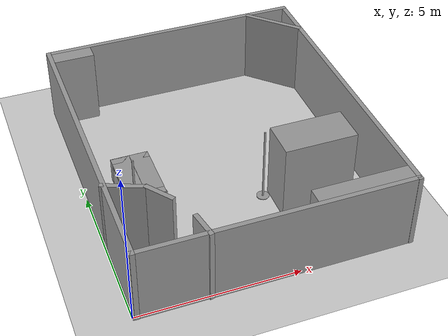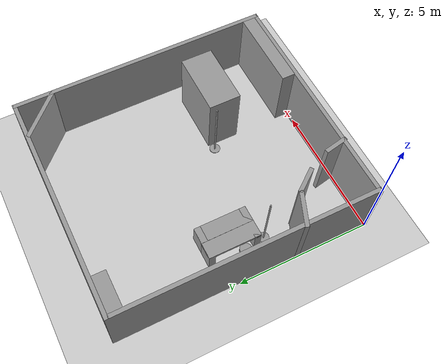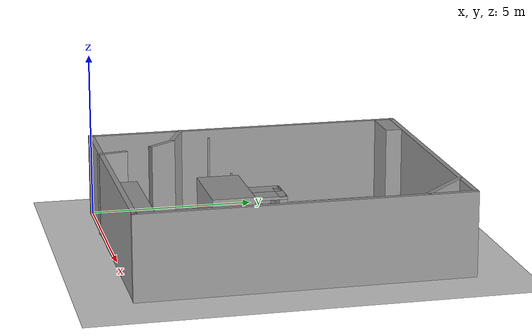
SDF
<sdf version="1.6">
 <world name="default">
  <model name="ground_plane">
   <pose>6.5 0 0 0 -0 0</pose>
   <static>1</static>
   <link name="link">
    <collision name="collision">
     <geometry><plane><normal>0 0 1</normal><size>100 100</size></plane></geometry>
     <surface>
      <contact><collide_bitmask>65535</collide_bitmask></contact>
      <friction><ode><mu>100</mu><mu2>50</mu2></ode></friction>
     </surface>
    </collision>
    <visual name="visual">
     <cast_shadows>0</cast_shadows>
     <geometry><plane><normal>0 0 1</normal><size>100 100</size></plane></geometry>
     <material>
      <script><uri>file://media/materials/scripts/gazebo.material</uri><name>Gazebo/Grey</name></script>
     </material>
    </visual>
   </link>
  </model>
  <model name="Untitled_6">
   <link name="link_0">
    <inertial>
     <mass>1</mass>
     <inertia><ixx>0.145833</ixx><ixy>0</ixy><ixz>0</ixz><iyy>0.145833</iyy><iyz>0</iyz><izz>0.125</izz></inertia>
    </inertial>
    <visual name="visual">
     <geometry><cylinder><radius>0.22</radius><length>0.15</length></cylinder></geometry>
     <material>
      <lighting>1</lighting>
      <script><uri>file://media/materials/scripts/gazebo.material</uri><name>Gazebo/Grey</name></script>
      <shader type="pixel"><normal_map>__default__</normal_map></shader>
      <ambient>0.3 0.3 0.3 1</ambient>
      <diffuse>0.7 0.7 0.7 1</diffuse>
      <specular>0.01 0.01 0.01 1</specular>
      <emissive>0 0 0 1</emissive>
     </material>
    </visual>
    <collision name="collision">
     <geometry><cylinder><radius>0.22</radius><length>0.15</length></cylinder></geometry>
     <surface>
      <friction>
       <ode><mu>1</mu><mu2>1</mu2><fdir1>0 0 0</fdir1><slip1>0</slip1><slip2>0</slip2></ode>
       <torsional>
        <coefficient>1</coefficient>
        <patch_radius>0</patch_radius>
        <surface_radius>0</surface_radius>
        <use_patch_radius>1</use_patch_radius>
        <ode><slip>0</slip></ode>
       </torsional>
      </friction>
      <bounce><restitution_coefficient>0</restitution_coefficient><threshold>1e+06</threshold></bounce>
      <contact>
       <collide_without_contact>0</collide_without_contact>
       <collide_without_contact_bitmask>1</collide_without_contact_bitmask>
       <collide_bitmask>1</collide_bitmask>
       <ode>
        <soft_cfm>0</soft_cfm>
        <soft_erp>0.2</soft_erp>
        <kp>1e+13</kp>
        <kd>1</kd>
        <max_vel>0.01</max_vel>
        <min_depth>0</min_depth>
       </ode>
       <bullet>
        <split_impulse>1</split_impulse>
        <split_impulse_penetration_threshold>-0.01</split_impulse_penetration_threshold>
        <soft_cfm>0</soft_cfm>
        <soft_erp>0.2</soft_erp>
        <kp>1e+13</kp>
        <kd>1</kd>
       </bullet>
      </contact>
     </surface>
    </collision>
   </link>
   <static>0</static>
   <pose>1.0026 4.25805 0.074993 1e-06 1e-06 0</pose>
  </model>
  <model name="Untitled_7">
   <link name="link_0">
    <inertial>
     <mass>1</mass>
     <inertia><ixx>0.145833</ixx><ixy>0</ixy><ixz>0</ixz><iyy>0.145833</iyy><iyz>0</iyz><izz>0.125</izz></inertia>
    </inertial>
    <visual name="visual">
     <geometry><cylinder><radius>0.22</radius><length>0.15</length></cylinder></geometry>
     <material>
      <lighting>1</lighting>
      <script><uri>file://media/materials/scripts/gazebo.material</uri><name>Gazebo/Grey</name></script>
      <shader type="pixel"><normal_map>__default__</normal_map></shader>
      <ambient>0.3 0.3 0.3 1</ambient>
      <diffuse>0.7 0.7 0.7 1</diffuse>
      <specular>0.01 0.01 0.01 1</specular>
      <emissive>0 0 0 1</emissive>
     </material>
    </visual>
    <collision name="collision">
     <geometry><cylinder><radius>0.22</radius><length>0.15</length></cylinder></geometry>
     <surface>
      <friction>
       <ode><mu>1</mu><mu2>1</mu2><fdir1>0 0 0</fdir1><slip1>0</slip1><slip2>0</slip2></ode>
       <torsional>
        <coefficient>1</coefficient>
        <patch_radius>0</patch_radius>
        <surface_radius>0</surface_radius>
        <use_patch_radius>1</use_patch_radius>
        <ode><slip>0</slip></ode>
       </torsional>
      </friction>
      <bounce><restitution_coefficient>0</restitution_coefficient><threshold>1e+06</threshold></bounce>
      <contact>
       <collide_without_contact>0</collide_without_contact>
       <collide_without_contact_bitmask>1</collide_without_contact_bitmask>
       <collide_bitmask>1</collide_bitmask>
       <ode>
        <soft_cfm>0</soft_cfm>
        <soft_erp>0.2</soft_erp>
        <kp>1e+13</kp>
        <kd>1</kd>
        <max_vel>0.01</max_vel>
        <min_depth>0</min_depth>
       </ode>
       <bullet>
        <split_impulse>1</split_impulse>
        <split_impulse_penetration_threshold>-0.01</split_impulse_penetration_threshold>
        <soft_cfm>0</soft_cfm>
        <soft_erp>0.2</soft_erp>
        <kp>1e+13</kp>
        <kd>1</kd>
       </bullet>
      </contact>
     </surface>
    </collision>
   </link>
   <static>0</static>
   <pose>2.2 4.38853 0.074993 1e-06 1e-06 0</pose>
  </model>
  <model name="Table_SF_clone">
   <link name="link_0">
    <pose>-0 -0.875 -0.116667 0 -0 0</pose>
    <inertial>
     <mass>1</mass>
     <inertia>
      <ixx>0.166667</ixx>
      <ixy>0</ixy>
      <ixz>0</ixz>
      <iyy>0.166667</iyy>
      <iyz>0</iyz>
      <izz>0.166667</izz>
     </inertia>
    </inertial>
    <visual name="visual">
     <geometry><box><size>0.6 0.25 0.8</size></box></geometry>
     <material>
      <lighting>1</lighting>
      <script><uri>file://media/materials/scripts/gazebo.material</uri><name>Gazebo/Grey</name></script>
      <shader type="pixel"><normal_map>__default__</normal_map></shader>
      <ambient>0.3 0.3 0.3 1</ambient>
      <diffuse>0.7 0.7 0.7 1</diffuse>
      <specular>0.01 0.01 0.01 1</specular>
      <emissive>0 0 0 1</emissive>
     </material>
    </visual>
    <collision name="collision">
     <geometry><box><size>0.6 0.25 0.8</size></box></geometry>
     <surface>
      <friction>
       <ode><mu>1</mu><mu2>1</mu2><fdir1>0 0 0</fdir1><slip1>0</slip1><slip2>0</slip2></ode>
       <torsional>
        <coefficient>1</coefficient>
        <patch_radius>0</patch_radius>
        <surface_radius>0</surface_radius>
        <use_patch_radius>1</use_patch_radius>
        <ode><slip>0</slip></ode>
       </torsional>
      </friction>
      <bounce><restitution_coefficient>0</restitution_coefficient><threshold>1e+06</threshold></bounce>
      <contact>
       <collide_without_contact>0</collide_without_contact>
       <collide_without_contact_bitmask>1</collide_without_contact_bitmask>
       <collide_bitmask>1</collide_bitmask>
       <ode>
        <soft_cfm>0</soft_cfm>
        <soft_erp>0.2</soft_erp>
        <kp>1e+13</kp>
        <kd>1</kd>
        <max_vel>0.01</max_vel>
        <min_depth>0</min_depth>
       </ode>
       <bullet>
        <split_impulse>1</split_impulse>
        <split_impulse_penetration_threshold>-0.01</split_impulse_penetration_threshold>
        <soft_cfm>0</soft_cfm>
        <soft_erp>0.2</soft_erp>
        <kp>1e+13</kp>
        <kd>1</kd>
       </bullet>
      </contact>
     </surface>
    </collision>
   </link>
   <link name="link_0_clone">
    <pose>0 0.875 -0.116667 0 -0 0</pose>
    <inertial>
     <mass>1</mass>
     <inertia>
      <ixx>0.166667</ixx>
      <ixy>0</ixy>
      <ixz>0</ixz>
      <iyy>0.166667</iyy>
      <iyz>0</iyz>
      <izz>0.166667</izz>
     </inertia>
    </inertial>
    <visual name="visual">
     <geometry><box><size>0.6 0.25 0.8</size></box></geometry>
     <material>
      <lighting>1</lighting>
      <script><uri>file://media/materials/scripts/gazebo.material</uri><name>Gazebo/Grey</name></script>
      <shader type="pixel"><normal_map>__default__</normal_map></shader>
      <ambient>0.3 0.3 0.3 1</ambient>
      <diffuse>0.7 0.7 0.7 1</diffuse>
      <specular>0.01 0.01 0.01 1</specular>
      <emissive>0 0 0 1</emissive>
     </material>
    </visual>
    <collision name="collision">
     <geometry><box><size>0.6 0.25 0.8</size></box></geometry>
     <surface>
      <friction>
       <ode><mu>1</mu><mu2>1</mu2><fdir1>0 0 0</fdir1><slip1>0</slip1><slip2>0</slip2></ode>
       <torsional>
        <coefficient>1</coefficient>
        <patch_radius>0</patch_radius>
        <surface_radius>0</surface_radius>
        <use_patch_radius>1</use_patch_radius>
        <ode><slip>0</slip></ode>
       </torsional>
      </friction>
      <bounce><restitution_coefficient>0</restitution_coefficient><threshold>1e+06</threshold></bounce>
      <contact>
       <collide_without_contact>0</collide_without_contact>
       <collide_without_contact_bitmask>1</collide_without_contact_bitmask>
       <collide_bitmask>1</collide_bitmask>
       <ode>
        <soft_cfm>0</soft_cfm>
        <soft_erp>0.2</soft_erp>
        <kp>1e+13</kp>
        <kd>1</kd>
        <max_vel>0.01</max_vel>
        <min_depth>0</min_depth>
       </ode>
       <bullet>
        <split_impulse>1</split_impulse>
        <split_impulse_penetration_threshold>-0.01</split_impulse_penetration_threshold>
        <soft_cfm>0</soft_cfm>
        <soft_erp>0.2</soft_erp>
        <kp>1e+13</kp>
        <kd>1</kd>
       </bullet>
      </contact>
     </surface>
    </collision>
   </link>
   <link name="link_1">
    <pose>-0 0 0.233333 0 -0 0</pose>
    <inertial>
     <mass>1</mass>
     <inertia>
      <ixx>0.166667</ixx>
      <ixy>0</ixy>
      <ixz>0</ixz>
      <iyy>0.166667</iyy>
      <iyz>0</iyz>
      <izz>0.166667</izz>
     </inertia>
    </inertial>
    <visual name="visual">
     <geometry><box><size>0.6 2 0.1</size></box></geometry>
     <material>
      <lighting>1</lighting>
      <script><uri>file://media/materials/scripts/gazebo.material</uri><name>Gazebo/Grey</name></script>
      <shader type="pixel"><normal_map>__default__</normal_map></shader>
      <ambient>0.3 0.3 0.3 1</ambient>
      <diffuse>0.7 0.7 0.7 1</diffuse>
      <specular>0.01 0.01 0.01 1</specular>
      <emissive>0 0 0 1</emissive>
     </material>
    </visual>
    <collision name="collision">
     <geometry><box><size>0.6 2 0.1</size></box></geometry>
     <surface>
      <friction>
       <ode><mu>1</mu><mu2>1</mu2><fdir1>0 0 0</fdir1><slip1>0</slip1><slip2>0</slip2></ode>
       <torsional>
        <coefficient>1</coefficient>
        <patch_radius>0</patch_radius>
        <surface_radius>0</surface_radius>
        <use_patch_radius>1</use_patch_radius>
        <ode><slip>0</slip></ode>
       </torsional>
      </friction>
      <bounce><restitution_coefficient>0</restitution_coefficient><threshold>1e+06</threshold></bounce>
      <contact>
       <collide_without_contact>0</collide_without_contact>
       <collide_without_contact_bitmask>1</collide_without_contact_bitmask>
       <collide_bitmask>1</collide_bitmask>
       <ode>
        <soft_cfm>0</soft_cfm>
        <soft_erp>0.2</soft_erp>
        <kp>1e+13</kp>
        <kd>1</kd>
        <max_vel>0.01</max_vel>
        <min_depth>0</min_depth>
       </ode>
       <bullet>
        <split_impulse>1</split_impulse>
        <split_impulse_penetration_threshold>-0.01</split_impulse_penetration_threshold>
        <soft_cfm>0</soft_cfm>
        <soft_erp>0.2</soft_erp>
        <kp>1e+13</kp>
        <kd>1</kd>
       </bullet>
      </contact>
     </surface>
    </collision>
   </link>
   <joint name="link_0_JOINT_0" type="fixed">
    <parent>link_0</parent>
    <child>link_1</child>
    <physics>
     <ode><limit><cfm>0</cfm><erp>0.2</erp></limit><suspension><cfm>0</cfm><erp>0.2</erp></suspension></ode>
    </physics>
   </joint>
   <joint name="link_0_clone_JOINT_1" type="fixed">
    <parent>link_0_clone</parent>
    <child>link_1</child>
    <physics>
     <ode><limit><cfm>0</cfm><erp>0.2</erp></limit><suspension><cfm>0</cfm><erp>0.2</erp></suspension></ode>
    </physics>
   </joint>
   <static>1</static>
   <pose>1.90049 4.69695 0.516667 0 0 -0.00054</pose>
  </model>
  <model name="Pillar_SF_clone">
   <link name="link_0">
    <pose>-0 0 0.01 -0 -0 -0</pose>
    <inertial>
     <mass>1</mass>
     <inertia><ixx>0.145833</ixx><ixy>0</ixy><ixz>0</ixz><iyy>0.145833</iyy><iyz>0</iyz><izz>0.125</izz></inertia>
    </inertial>
    <visual name="visual">
     <geometry><cylinder><radius>0.2</radius><length>0.02</length></cylinder></geometry>
     <material>
      <lighting>1</lighting>
      <script><uri>file://media/materials/scripts/gazebo.material</uri><name>Gazebo/Grey</name></script>
      <shader type="pixel"><normal_map>__default__</normal_map></shader>
      <ambient>0.3 0.3 0.3 1</ambient>
      <diffuse>0.7 0.7 0.7 1</diffuse>
      <specular>0.01 0.01 0.01 1</specular>
      <emissive>0 0 0 1</emissive>
     </material>
    </visual>
    <collision name="collision">
     <geometry><cylinder><radius>0.2</radius><length>0.02</length></cylinder></geometry>
     <surface>
      <friction>
       <ode><mu>1</mu><mu2>1</mu2><fdir1>0 0 0</fdir1><slip1>0</slip1><slip2>0</slip2></ode>
       <torsional>
        <coefficient>1</coefficient>
        <patch_radius>0</patch_radius>
        <surface_radius>0</surface_radius>
        <use_patch_radius>1</use_patch_radius>
        <ode><slip>0</slip></ode>
       </torsional>
      </friction>
      <bounce><restitution_coefficient>0</restitution_coefficient><threshold>1e+06</threshold></bounce>
      <contact>
       <collide_without_contact>0</collide_without_contact>
       <collide_without_contact_bitmask>1</collide_without_contact_bitmask>
       <collide_bitmask>1</collide_bitmask>
       <ode>
        <soft_cfm>0</soft_cfm>
        <soft_erp>0.2</soft_erp>
        <kp>1e+13</kp>
        <kd>1</kd>
        <max_vel>0.01</max_vel>
        <min_depth>0</min_depth>
       </ode>
       <bullet>
        <split_impulse>1</split_impulse>
        <split_impulse_penetration_threshold>-0.01</split_impulse_penetration_threshold>
        <soft_cfm>0</soft_cfm>
        <soft_erp>0.2</soft_erp>
        <kp>1e+13</kp>
        <kd>1</kd>
       </bullet>
      </contact>
     </surface>
    </collision>
   </link>
   <link name="link_1">
    <pose>-0 0 1.25 -0 -0 -0</pose>
    <inertial>
     <mass>1</mass>
     <inertia><ixx>0.145833</ixx><ixy>0</ixy><ixz>0</ixz><iyy>0.145833</iyy><iyz>0</iyz><izz>0.125</izz></inertia>
    </inertial>
    <visual name="visual">
     <geometry><cylinder><radius>0.03</radius><length>2.5</length></cylinder></geometry>
     <material>
      <lighting>1</lighting>
      <script><uri>file://media/materials/scripts/gazebo.material</uri><name>Gazebo/Grey</name></script>
      <shader type="pixel"><normal_map>__default__</normal_map></shader>
      <ambient>0.3 0.3 0.3 1</ambient>
      <diffuse>0.7 0.7 0.7 1</diffuse>
      <specular>0.01 0.01 0.01 1</specular>
      <emissive>0 0 0 1</emissive>
     </material>
    </visual>
    <collision name="collision">
     <geometry><cylinder><radius>0.03</radius><length>2.5</length></cylinder></geometry>
     <surface>
      <friction>
       <ode><mu>1</mu><mu2>1</mu2><fdir1>0 0 0</fdir1><slip1>0</slip1><slip2>0</slip2></ode>
       <torsional>
        <coefficient>1</coefficient>
        <patch_radius>0</patch_radius>
        <surface_radius>0</surface_radius>
        <use_patch_radius>1</use_patch_radius>
        <ode><slip>0</slip></ode>
       </torsional>
      </friction>
      <bounce><restitution_coefficient>0</restitution_coefficient><threshold>1e+06</threshold></bounce>
      <contact>
       <collide_without_contact>0</collide_without_contact>
       <collide_without_contact_bitmask>1</collide_without_contact_bitmask>
       <collide_bitmask>1</collide_bitmask>
       <ode>
        <soft_cfm>0</soft_cfm>
        <soft_erp>0.2</soft_erp>
        <kp>1e+13</kp>
        <kd>1</kd>
        <max_vel>0.01</max_vel>
        <min_depth>0</min_depth>
       </ode>
       <bullet>
        <split_impulse>1</split_impulse>
        <split_impulse_penetration_threshold>-0.01</split_impulse_penetration_threshold>
        <soft_cfm>0</soft_cfm>
        <soft_erp>0.2</soft_erp>
        <kp>1e+13</kp>
        <kd>1</kd>
       </bullet>
      </contact>
     </surface>
    </collision>
   </link>
   <joint name="link_0_JOINT_0" type="fixed">
    <parent>link_0</parent>
    <child>link_1</child>
    <physics>
     <ode><limit><cfm>0</cfm><erp>0.2</erp></limit><suspension><cfm>0</cfm><erp>0.2</erp></suspension></ode>
    </physics>
   </joint>
   <static>1</static>
   <pose>1.1582 3.4573 0 0 0 -0.013058</pose>
  </model>
  <model name="Pillar_SF_clone_2">
   <link name="link_0">
    <pose>0 -0 0.01 0 -0 0</pose>
    <inertial>
     <mass>1</mass>
     <inertia><ixx>0.145833</ixx><ixy>0</ixy><ixz>0</ixz><iyy>0.145833</iyy><iyz>0</iyz><izz>0.125</izz></inertia>
    </inertial>
    <visual name="visual">
     <geometry><cylinder><radius>0.2</radius><length>0.02</length></cylinder></geometry>
     <material>
      <lighting>1</lighting>
      <script><uri>file://media/materials/scripts/gazebo.material</uri><name>Gazebo/Grey</name></script>
      <shader type="pixel"><normal_map>__default__</normal_map></shader>
      <ambient>0.3 0.3 0.3 1</ambient>
      <diffuse>0.7 0.7 0.7 1</diffuse>
      <specular>0.01 0.01 0.01 1</specular>
      <emissive>0 0 0 1</emissive>
     </material>
    </visual>
    <collision name="collision">
     <geometry><cylinder><radius>0.2</radius><length>0.02</length></cylinder></geometry>
     <surface>
      <friction>
       <ode><mu>1</mu><mu2>1</mu2><fdir1>0 0 0</fdir1><slip1>0</slip1><slip2>0</slip2></ode>
       <torsional>
        <coefficient>1</coefficient>
        <patch_radius>0</patch_radius>
        <surface_radius>0</surface_radius>
        <use_patch_radius>1</use_patch_radius>
        <ode><slip>0</slip></ode>
       </torsional>
      </friction>
      <bounce><restitution_coefficient>0</restitution_coefficient><threshold>1e+06</threshold></bounce>
      <contact>
       <collide_without_contact>0</collide_without_contact>
       <collide_without_contact_bitmask>1</collide_without_contact_bitmask>
       <collide_bitmask>1</collide_bitmask>
       <ode>
        <soft_cfm>0</soft_cfm>
        <soft_erp>0.2</soft_erp>
        <kp>1e+13</kp>
        <kd>1</kd>
        <max_vel>0.01</max_vel>
        <min_depth>0</min_depth>
       </ode>
       <bullet>
        <split_impulse>1</split_impulse>
        <split_impulse_penetration_threshold>-0.01</split_impulse_penetration_threshold>
        <soft_cfm>0</soft_cfm>
        <soft_erp>0.2</soft_erp>
        <kp>1e+13</kp>
        <kd>1</kd>
       </bullet>
      </contact>
     </surface>
    </collision>
   </link>
   <link name="link_1">
    <pose>0 -0 1.25 0 -0 0</pose>
    <inertial>
     <mass>1</mass>
     <inertia><ixx>0.145833</ixx><ixy>0</ixy><ixz>0</ixz><iyy>0.145833</iyy><iyz>0</iyz><izz>0.125</izz></inertia>
    </inertial>
    <visual name="visual">
     <geometry><cylinder><radius>0.03</radius><length>2.5</length></cylinder></geometry>
     <material>
      <lighting>1</lighting>
      <script><uri>file://media/materials/scripts/gazebo.material</uri><name>Gazebo/Grey</name></script>
      <shader type="pixel"><normal_map>__default__</normal_map></shader>
      <ambient>0.3 0.3 0.3 1</ambient>
      <diffuse>0.7 0.7 0.7 1</diffuse>
      <specular>0.01 0.01 0.01 1</specular>
      <emissive>0 0 0 1</emissive>
     </material>
    </visual>
    <collision name="collision">
     <geometry><cylinder><radius>0.03</radius><length>2.5</length></cylinder></geometry>
     <surface>
      <friction>
       <ode><mu>1</mu><mu2>1</mu2><fdir1>0 0 0</fdir1><slip1>0</slip1><slip2>0</slip2></ode>
       <torsional>
        <coefficient>1</coefficient>
        <patch_radius>0</patch_radius>
        <surface_radius>0</surface_radius>
        <use_patch_radius>1</use_patch_radius>
        <ode><slip>0</slip></ode>
       </torsional>
      </friction>
      <bounce><restitution_coefficient>0</restitution_coefficient><threshold>1e+06</threshold></bounce>
      <contact>
       <collide_without_contact>0</collide_without_contact>
       <collide_without_contact_bitmask>1</collide_without_contact_bitmask>
       <collide_bitmask>1</collide_bitmask>
       <ode>
        <soft_cfm>0</soft_cfm>
        <soft_erp>0.2</soft_erp>
        <kp>1e+13</kp>
        <kd>1</kd>
        <max_vel>0.01</max_vel>
        <min_depth>0</min_depth>
       </ode>
       <bullet>
        <split_impulse>1</split_impulse>
        <split_impulse_penetration_threshold>-0.01</split_impulse_penetration_threshold>
        <soft_cfm>0</soft_cfm>
        <soft_erp>0.2</soft_erp>
        <kp>1e+13</kp>
        <kd>1</kd>
       </bullet>
      </contact>
     </surface>
    </collision>
   </link>
   <joint name="link_0_JOINT_0" type="fixed">
    <parent>link_0</parent>
    <child>link_1</child>
    <physics>
     <ode><limit><cfm>0</cfm><erp>0.2</erp></limit><suspension><cfm>0</cfm><erp>0.2</erp></suspension></ode>
    </physics>
   </joint>
   <static>1</static>
   <pose>5.17893 3.32127 0 0 0 -0.013001</pose>
  </model>
  <model name="Table_SF">
   <link name="link_0">
    <pose>-0 -0.875 -0.116667 0 -0 0</pose>
    <inertial>
     <mass>1000</mass>
     <inertia>
      <ixx>0.166667</ixx>
      <ixy>0</ixy>
      <ixz>0</ixz>
      <iyy>0.166667</iyy>
      <iyz>0</iyz>
      <izz>0.166667</izz>
     </inertia>
    </inertial>
    <visual name="visual">
     <geometry><box><size>0.6 0.25 0.8</size></box></geometry>
     <material>
      <lighting>1</lighting>
      <script><uri>file://media/materials/scripts/gazebo.material</uri><name>Gazebo/Grey</name></script>
      <shader type="pixel"><normal_map>__default__</normal_map></shader>
      <ambient>0.3 0.3 0.3 1</ambient>
      <diffuse>0.7 0.7 0.7 1</diffuse>
      <specular>0.01 0.01 0.01 1</specular>
      <emissive>0 0 0 1</emissive>
     </material>
    </visual>
    <collision name="collision">
     <geometry><box><size>0.6 0.25 0.8</size></box></geometry>
     <surface>
      <friction>
       <ode><mu>1</mu><mu2>1</mu2><fdir1>0 0 0</fdir1><slip1>0</slip1><slip2>0</slip2></ode>
       <torsional>
        <coefficient>1</coefficient>
        <patch_radius>0</patch_radius>
        <surface_radius>0</surface_radius>
        <use_patch_radius>1</use_patch_radius>
        <ode><slip>0</slip></ode>
       </torsional>
      </friction>
      <bounce><restitution_coefficient>0</restitution_coefficient><threshold>1e+06</threshold></bounce>
      <contact>
       <collide_without_contact>0</collide_without_contact>
       <collide_without_contact_bitmask>1</collide_without_contact_bitmask>
       <collide_bitmask>1</collide_bitmask>
       <ode>
        <soft_cfm>0</soft_cfm>
        <soft_erp>0.2</soft_erp>
        <kp>1e+13</kp>
        <kd>1</kd>
        <max_vel>0.01</max_vel>
        <min_depth>0</min_depth>
       </ode>
       <bullet>
        <split_impulse>1</split_impulse>
        <split_impulse_penetration_threshold>-0.01</split_impulse_penetration_threshold>
        <soft_cfm>0</soft_cfm>
        <soft_erp>0.2</soft_erp>
        <kp>1e+13</kp>
        <kd>1</kd>
       </bullet>
      </contact>
     </surface>
    </collision>
   </link>
   <link name="link_0_clone">
    <pose>0 0.875 -0.116667 0 -0 0</pose>
    <inertial>
     <mass>1000</mass>
     <inertia>
      <ixx>0.166667</ixx>
      <ixy>0</ixy>
      <ixz>0</ixz>
      <iyy>0.166667</iyy>
      <iyz>0</iyz>
      <izz>0.166667</izz>
     </inertia>
    </inertial>
    <visual name="visual">
     <geometry><box><size>0.6 0.25 0.8</size></box></geometry>
     <material>
      <lighting>1</lighting>
      <script><uri>file://media/materials/scripts/gazebo.material</uri><name>Gazebo/Grey</name></script>
      <shader type="pixel"><normal_map>__default__</normal_map></shader>
      <ambient>0.3 0.3 0.3 1</ambient>
      <diffuse>0.7 0.7 0.7 1</diffuse>
      <specular>0.01 0.01 0.01 1</specular>
      <emissive>0 0 0 1</emissive>
     </material>
    </visual>
    <collision name="collision">
     <geometry><box><size>0.6 0.25 0.8</size></box></geometry>
     <surface>
      <friction>
       <ode><mu>1</mu><mu2>1</mu2><fdir1>0 0 0</fdir1><slip1>0</slip1><slip2>0</slip2></ode>
       <torsional>
        <coefficient>1</coefficient>
        <patch_radius>0</patch_radius>
        <surface_radius>0</surface_radius>
        <use_patch_radius>1</use_patch_radius>
        <ode><slip>0</slip></ode>
       </torsional>
      </friction>
      <bounce><restitution_coefficient>0</restitution_coefficient><threshold>1e+06</threshold></bounce>
      <contact>
       <collide_without_contact>0</collide_without_contact>
       <collide_without_contact_bitmask>1</collide_without_contact_bitmask>
       <collide_bitmask>1</collide_bitmask>
       <ode>
        <soft_cfm>0</soft_cfm>
        <soft_erp>0.2</soft_erp>
        <kp>1e+13</kp>
        <kd>1</kd>
        <max_vel>0.01</max_vel>
        <min_depth>0</min_depth>
       </ode>
       <bullet>
        <split_impulse>1</split_impulse>
        <split_impulse_penetration_threshold>-0.01</split_impulse_penetration_threshold>
        <soft_cfm>0</soft_cfm>
        <soft_erp>0.2</soft_erp>
        <kp>1e+13</kp>
        <kd>1</kd>
       </bullet>
      </contact>
     </surface>
    </collision>
   </link>
   <link name="link_1">
    <pose>0 0 0.233333 0 -0 0</pose>
    <inertial>
     <mass>1000</mass>
     <inertia>
      <ixx>0.166667</ixx>
      <ixy>0</ixy>
      <ixz>0</ixz>
      <iyy>0.166667</iyy>
      <iyz>0</iyz>
      <izz>0.166667</izz>
     </inertia>
    </inertial>
    <visual name="visual">
     <geometry><box><size>0.6 2 0.1</size></box></geometry>
     <material>
      <lighting>1</lighting>
      <script><uri>file://media/materials/scripts/gazebo.material</uri><name>Gazebo/Grey</name></script>
      <shader type="pixel"><normal_map>__default__</normal_map></shader>
      <ambient>0.3 0.3 0.3 1</ambient>
      <diffuse>0.7 0.7 0.7 1</diffuse>
      <specular>0.01 0.01 0.01 1</specular>
      <emissive>0 0 0 1</emissive>
     </material>
    </visual>
    <collision name="collision">
     <geometry><box><size>0.6 2 0.1</size></box></geometry>
     <surface>
      <friction>
       <ode><mu>1</mu><mu2>1</mu2><fdir1>0 0 0</fdir1><slip1>0</slip1><slip2>0</slip2></ode>
       <torsional>
        <coefficient>1</coefficient>
        <patch_radius>0</patch_radius>
        <surface_radius>0</surface_radius>
        <use_patch_radius>1</use_patch_radius>
        <ode><slip>0</slip></ode>
       </torsional>
      </friction>
      <bounce><restitution_coefficient>0</restitution_coefficient><threshold>1e+06</threshold></bounce>
      <contact>
       <collide_without_contact>0</collide_without_contact>
       <collide_without_contact_bitmask>1</collide_without_contact_bitmask>
       <collide_bitmask>1</collide_bitmask>
       <ode>
        <soft_cfm>0</soft_cfm>
        <soft_erp>0.2</soft_erp>
        <kp>1e+13</kp>
        <kd>1</kd>
        <max_vel>0.01</max_vel>
        <min_depth>0</min_depth>
       </ode>
       <bullet>
        <split_impulse>1</split_impulse>
        <split_impulse_penetration_threshold>-0.01</split_impulse_penetration_threshold>
        <soft_cfm>0</soft_cfm>
        <soft_erp>0.2</soft_erp>
        <kp>1e+13</kp>
        <kd>1</kd>
       </bullet>
      </contact>
     </surface>
    </collision>
   </link>
   <joint name="link_0_JOINT_0" type="fixed">
    <parent>link_0</parent>
    <child>link_1</child>
    <physics>
     <ode><limit><cfm>0</cfm><erp>0.2</erp></limit><suspension><cfm>0</cfm><erp>0.2</erp></suspension></ode>
    </physics>
   </joint>
   <joint name="link_0_clone_JOINT_1" type="fixed">
    <parent>link_0_clone</parent>
    <child>link_1</child>
    <physics>
     <ode><limit><cfm>0</cfm><erp>0.2</erp></limit><suspension><cfm>0</cfm><erp>0.2</erp></suspension></ode>
    </physics>
   </joint>
   <static>1</static>
   <pose>1.29795 4.69731 0.516666 0 4e-06 -2e-06</pose>
  </model>
  <model name="Factory_room">
   <link name="Wall_2">
    <pose>0.038385 4.83866 0 0 -0 0</pose>
    <visual name="Wall_2_Visual">
     <pose>0 0 1.25 0 -0 0</pose>
     <geometry><box><size>8.5 0.15 2.5</size></box></geometry>
     <material>
      <script><uri>file://media/materials/scripts/gazebo.material</uri><name>Gazebo/Grey</name></script>
      <ambient>1 1 1 1</ambient>
      <shader type="pixel"/>
      <diffuse>0.7 0.7 0.7 1</diffuse>
      <specular>0.01 0.01 0.01 1</specular>
      <emissive>0 0 0 1</emissive>
     </material>
     <meta><layer>0</layer></meta>
    </visual>
    <collision name="Wall_2_Collision">
     <pose>0 0 1.25 0 -0 0</pose>
     <geometry><box><size>8.5 0.15 2.5</size></box></geometry>
     <surface>
      <friction>
       <ode><mu>1</mu><mu2>1</mu2><fdir1>0 0 0</fdir1><slip1>0</slip1><slip2>0</slip2></ode>
       <torsional>
        <coefficient>1</coefficient>
        <patch_radius>0</patch_radius>
        <surface_radius>0</surface_radius>
        <use_patch_radius>1</use_patch_radius>
        <ode><slip>0</slip></ode>
       </torsional>
      </friction>
      <bounce><restitution_coefficient>0</restitution_coefficient><threshold>1e+06</threshold></bounce>
      <contact>
       <collide_without_contact>0</collide_without_contact>
       <collide_without_contact_bitmask>1</collide_without_contact_bitmask>
       <collide_bitmask>1</collide_bitmask>
       <ode>
        <soft_cfm>0</soft_cfm>
        <soft_erp>0.2</soft_erp>
        <kp>1e+13</kp>
        <kd>1</kd>
        <max_vel>0.01</max_vel>
        <min_depth>0</min_depth>
       </ode>
       <bullet>
        <split_impulse>1</split_impulse>
        <split_impulse_penetration_threshold>-0.01</split_impulse_penetration_threshold>
        <soft_cfm>0</soft_cfm>
        <soft_erp>0.2</soft_erp>
        <kp>1e+13</kp>
        <kd>1</kd>
       </bullet>
      </contact>
     </surface>
    </collision>
   </link>
   <link name="Wall_22">
    <pose>-3.6458 -2.20352 0 0 0 -0.391215</pose>
    <inertial>
     <mass>1</mass>
     <inertia><ixx>1</ixx><ixy>0</ixy><ixz>0</ixz><iyy>1</iyy><iyz>0</iyz><izz>1</izz></inertia>
    </inertial>
    <visual name="Wall_22_Visual">
     <pose>0 0 1.25 0 -0 0</pose>
     <geometry><box><size>1.3 0.15 2.5</size></box></geometry>
     <material>
      <script><uri>file://media/materials/scripts/gazebo.material</uri><name>Gazebo/Grey</name></script>
      <ambient>1 1 1 1</ambient>
      <shader type="pixel"><normal_map>__default__</normal_map></shader>
      <diffuse>0.7 0.7 0.7 1</diffuse>
      <specular>0.01 0.01 0.01 1</specular>
      <emissive>0 0 0 1</emissive>
     </material>
     <meta><layer>0</layer></meta>
    </visual>
    <collision name="Wall_22_Collision">
     <pose>0 0 1.25 0 -0 0</pose>
     <geometry><box><size>1.3 0.15 2.5</size></box></geometry>
     <surface>
      <friction>
       <ode><mu>1</mu><mu2>1</mu2><fdir1>0 0 0</fdir1><slip1>0</slip1><slip2>0</slip2></ode>
       <torsional>
        <coefficient>1</coefficient>
        <patch_radius>0</patch_radius>
        <surface_radius>0</surface_radius>
        <use_patch_radius>1</use_patch_radius>
        <ode><slip>0</slip></ode>
       </torsional>
      </friction>
      <bounce><restitution_coefficient>0</restitution_coefficient><threshold>1e+06</threshold></bounce>
      <contact>
       <collide_without_contact>0</collide_without_contact>
       <collide_without_contact_bitmask>1</collide_without_contact_bitmask>
       <collide_bitmask>1</collide_bitmask>
       <ode>
        <soft_cfm>0</soft_cfm>
        <soft_erp>0.2</soft_erp>
        <kp>1e+13</kp>
        <kd>1</kd>
        <max_vel>0.01</max_vel>
        <min_depth>0</min_depth>
       </ode>
       <bullet>
        <split_impulse>1</split_impulse>
        <split_impulse_penetration_threshold>-0.01</split_impulse_penetration_threshold>
        <soft_cfm>0</soft_cfm>
        <soft_erp>0.2</soft_erp>
        <kp>1e+13</kp>
        <kd>1</kd>
       </bullet>
      </contact>
     </surface>
    </collision>
   </link>
   <link name="Wall_22_clone">
    <pose>-2.06011 -4.40996 0 0 0 -1.3844</pose>
    <inertial>
     <mass>1</mass>
     <inertia><ixx>1</ixx><ixy>0</ixy><ixz>0</ixz><iyy>1</iyy><iyz>0</iyz><izz>1</izz></inertia>
    </inertial>
    <visual name="Wall_22_Visual">
     <pose>0 0 1.25 0 -0 0</pose>
     <geometry><box><size>0.9 0.15 2.5</size></box></geometry>
     <material>
      <script><uri>file://media/materials/scripts/gazebo.material</uri><name>Gazebo/Grey</name></script>
      <ambient>1 1 1 1</ambient>
      <shader type="pixel"><normal_map>__default__</normal_map></shader>
      <diffuse>0.7 0.7 0.7 1</diffuse>
      <specular>0.01 0.01 0.01 1</specular>
      <emissive>0 0 0 1</emissive>
     </material>
     <meta><layer>0</layer></meta>
    </visual>
    <collision name="Wall_22_Collision">
     <pose>0 0 1.25 0 -0 0</pose>
     <geometry><box><size>0.9 0.15 2.5</size></box></geometry>
     <surface>
      <friction>
       <ode><mu>1</mu><mu2>1</mu2><fdir1>0 0 0</fdir1><slip1>0</slip1><slip2>0</slip2></ode>
       <torsional>
        <coefficient>1</coefficient>
        <patch_radius>0</patch_radius>
        <surface_radius>0</surface_radius>
        <use_patch_radius>1</use_patch_radius>
        <ode><slip>0</slip></ode>
       </torsional>
      </friction>
      <bounce><restitution_coefficient>0</restitution_coefficient><threshold>1e+06</threshold></bounce>
      <contact>
       <collide_without_contact>0</collide_without_contact>
       <collide_without_contact_bitmask>1</collide_without_contact_bitmask>
       <collide_bitmask>1</collide_bitmask>
       <ode>
        <soft_cfm>0</soft_cfm>
        <soft_erp>0.2</soft_erp>
        <kp>1e+13</kp>
        <kd>1</kd>
        <max_vel>0.01</max_vel>
        <min_depth>0</min_depth>
       </ode>
       <bullet>
        <split_impulse>1</split_impulse>
        <split_impulse_penetration_threshold>-0.01</split_impulse_penetration_threshold>
        <soft_cfm>0</soft_cfm>
        <soft_erp>0.2</soft_erp>
        <kp>1e+13</kp>
        <kd>1</kd>
       </bullet>
      </contact>
     </surface>
    </collision>
   </link>
   <link name="Wall_22_clone_clone">
    <pose>-2.77609 -2.79976 0 0 0 -0.928585</pose>
    <inertial>
     <mass>1</mass>
     <inertia><ixx>1</ixx><ixy>0</ixy><ixz>0</ixz><iyy>1</iyy><iyz>0</iyz><izz>1</izz></inertia>
    </inertial>
    <visual name="Wall_22_Visual">
     <pose>0 0 1.25 0 -0 0</pose>
     <geometry><box><size>1 0.15 2.5</size></box></geometry>
     <material>
      <script><uri>file://media/materials/scripts/gazebo.material</uri><name>Gazebo/Grey</name></script>
      <ambient>1 1 1 1</ambient>
      <shader type="pixel"><normal_map>__default__</normal_map></shader>
      <diffuse>0.7 0.7 0.7 1</diffuse>
      <specular>0.01 0.01 0.01 1</specular>
      <emissive>0 0 0 1</emissive>
     </material>
     <meta><layer>0</layer></meta>
    </visual>
    <collision name="Wall_22_Collision">
     <pose>0 0 1.25 0 -0 0</pose>
     <geometry><box><size>1 0.15 2.5</size></box></geometry>
     <surface>
      <friction>
       <ode><mu>1</mu><mu2>1</mu2><fdir1>0 0 0</fdir1><slip1>0</slip1><slip2>0</slip2></ode>
       <torsional>
        <coefficient>1</coefficient>
        <patch_radius>0</patch_radius>
        <surface_radius>0</surface_radius>
        <use_patch_radius>1</use_patch_radius>
        <ode><slip>0</slip></ode>
       </torsional>
      </friction>
      <bounce><restitution_coefficient>0</restitution_coefficient><threshold>1e+06</threshold></bounce>
      <contact>
       <collide_without_contact>0</collide_without_contact>
       <collide_without_contact_bitmask>1</collide_without_contact_bitmask>
       <collide_bitmask>1</collide_bitmask>
       <ode>
        <soft_cfm>0</soft_cfm>
        <soft_erp>0.2</soft_erp>
        <kp>1e+13</kp>
        <kd>1</kd>
        <max_vel>0.01</max_vel>
        <min_depth>0</min_depth>
       </ode>
       <bullet>
        <split_impulse>1</split_impulse>
        <split_impulse_penetration_threshold>-0.01</split_impulse_penetration_threshold>
        <soft_cfm>0</soft_cfm>
        <soft_erp>0.2</soft_erp>
        <kp>1e+13</kp>
        <kd>1</kd>
       </bullet>
      </contact>
     </surface>
    </collision>
   </link>
   <link name="Wall_24">
    <pose>2.64353 -4.43684 0 0 -0 0</pose>
    <visual name="Wall_24_Visual">
     <pose>0 0 1.25 0 -0 0</pose>
     <geometry><box><size>3 0.5 2.5</size></box></geometry>
     <material>
      <script><uri>file://media/materials/scripts/gazebo.material</uri><name>Gazebo/Grey</name></script>
      <ambient>1 1 1 1</ambient>
      <shader type="pixel"/>
      <diffuse>0.7 0.7 0.7 1</diffuse>
      <specular>0.01 0.01 0.01 1</specular>
      <emissive>0 0 0 1</emissive>
     </material>
     <meta><layer>0</layer></meta>
    </visual>
    <collision name="Wall_24_Collision">
     <pose>0 0 1.25 0 -0 0</pose>
     <geometry><box><size>3 0.5 2.5</size></box></geometry>
     <surface>
      <friction>
       <ode><mu>1</mu><mu2>1</mu2><fdir1>0 0 0</fdir1><slip1>0</slip1><slip2>0</slip2></ode>
       <torsional>
        <coefficient>1</coefficient>
        <patch_radius>0</patch_radius>
        <surface_radius>0</surface_radius>
        <use_patch_radius>1</use_patch_radius>
        <ode><slip>0</slip></ode>
       </torsional>
      </friction>
      <bounce><restitution_coefficient>0</restitution_coefficient><threshold>1e+06</threshold></bounce>
      <contact>
       <collide_without_contact>0</collide_without_contact>
       <collide_without_contact_bitmask>1</collide_without_contact_bitmask>
       <collide_bitmask>1</collide_bitmask>
       <ode>
        <soft_cfm>0</soft_cfm>
        <soft_erp>0.2</soft_erp>
        <kp>1e+13</kp>
        <kd>1</kd>
        <max_vel>0.01</max_vel>
        <min_depth>0</min_depth>
       </ode>
       <bullet>
        <split_impulse>1</split_impulse>
        <split_impulse_penetration_threshold>-0.01</split_impulse_penetration_threshold>
        <soft_cfm>0</soft_cfm>
        <soft_erp>0.2</soft_erp>
        <kp>1e+13</kp>
        <kd>1</kd>
       </bullet>
      </contact>
     </surface>
    </collision>
   </link>
   <link name="Wall_26">
    <pose>2.29544 -1.86664 0 0 -0 3.14159</pose>
    <visual name="Wall_26_Visual">
     <pose>0 0 1.25 0 -0 0</pose>
     <geometry><box><size>2.3 1.2 2.5</size></box></geometry>
     <material>
      <script><uri>file://media/materials/scripts/gazebo.material</uri><name>Gazebo/Grey</name></script>
      <ambient>1 1 1 1</ambient>
      <shader type="pixel"/>
      <diffuse>0.7 0.7 0.7 1</diffuse>
      <specular>0.01 0.01 0.01 1</specular>
      <emissive>0 0 0 1</emissive>
     </material>
     <meta><layer>0</layer></meta>
    </visual>
    <collision name="Wall_26_Collision">
     <pose>0 0 1.25 0 -0 0</pose>
     <geometry><box><size>2.3 1.2 2.5</size></box></geometry>
     <surface>
      <friction>
       <ode><mu>1</mu><mu2>1</mu2><fdir1>0 0 0</fdir1><slip1>0</slip1><slip2>0</slip2></ode>
       <torsional>
        <coefficient>1</coefficient>
        <patch_radius>0</patch_radius>
        <surface_radius>0</surface_radius>
        <use_patch_radius>1</use_patch_radius>
        <ode><slip>0</slip></ode>
       </torsional>
      </friction>
      <bounce><restitution_coefficient>0</restitution_coefficient><threshold>1e+06</threshold></bounce>
      <contact>
       <collide_without_contact>0</collide_without_contact>
       <collide_without_contact_bitmask>1</collide_without_contact_bitmask>
       <collide_bitmask>1</collide_bitmask>
       <ode>
        <soft_cfm>0</soft_cfm>
        <soft_erp>0.2</soft_erp>
        <kp>1e+13</kp>
        <kd>1</kd>
        <max_vel>0.01</max_vel>
        <min_depth>0</min_depth>
       </ode>
       <bullet>
        <split_impulse>1</split_impulse>
        <split_impulse_penetration_threshold>-0.01</split_impulse_penetration_threshold>
        <soft_cfm>0</soft_cfm>
        <soft_erp>0.2</soft_erp>
        <kp>1e+13</kp>
        <kd>1</kd>
       </bullet>
      </contact>
     </surface>
    </collision>
   </link>
   <link name="Wall_3">
    <pose>4.21338 0.038663 0 0 0 -1.5708</pose>
    <visual name="Wall_3_Visual">
     <pose>0 0 1.25 0 -0 0</pose>
     <geometry><box><size>9.75 0.15 2.5</size></box></geometry>
     <material>
      <script><uri>file://media/materials/scripts/gazebo.material</uri><name>Gazebo/Grey</name></script>
      <ambient>1 1 1 1</ambient>
      <shader type="pixel"/>
      <diffuse>0.7 0.7 0.7 1</diffuse>
      <specular>0.01 0.01 0.01 1</specular>
      <emissive>0 0 0 1</emissive>
     </material>
     <meta><layer>0</layer></meta>
    </visual>
    <collision name="Wall_3_Collision">
     <pose>0 0 1.25 0 -0 0</pose>
     <geometry><box><size>9.75 0.15 2.5</size></box></geometry>
     <surface>
      <friction>
       <ode><mu>1</mu><mu2>1</mu2><fdir1>0 0 0</fdir1><slip1>0</slip1><slip2>0</slip2></ode>
       <torsional>
        <coefficient>1</coefficient>
        <patch_radius>0</patch_radius>
        <surface_radius>0</surface_radius>
        <use_patch_radius>1</use_patch_radius>
        <ode><slip>0</slip></ode>
       </torsional>
      </friction>
      <bounce><restitution_coefficient>0</restitution_coefficient><threshold>1e+06</threshold></bounce>
      <contact>
       <collide_without_contact>0</collide_without_contact>
       <collide_without_contact_bitmask>1</collide_without_contact_bitmask>
       <collide_bitmask>1</collide_bitmask>
       <ode>
        <soft_cfm>0</soft_cfm>
        <soft_erp>0.2</soft_erp>
        <kp>1e+13</kp>
        <kd>1</kd>
        <max_vel>0.01</max_vel>
        <min_depth>0</min_depth>
       </ode>
       <bullet>
        <split_impulse>1</split_impulse>
        <split_impulse_penetration_threshold>-0.01</split_impulse_penetration_threshold>
        <soft_cfm>0</soft_cfm>
        <soft_erp>0.2</soft_erp>
        <kp>1e+13</kp>
        <kd>1</kd>
       </bullet>
      </contact>
     </surface>
    </collision>
   </link>
   <link name="Wall_4">
    <pose>0 -4.75 0 0 -0 3.14159</pose>
    <inertial>
     <mass>1</mass>
     <inertia><ixx>1</ixx><ixy>0</ixy><ixz>0</ixz><iyy>1</iyy><iyz>0</iyz><izz>1</izz></inertia>
    </inertial>
    <visual name="Wall_4_Visual">
     <pose>0 0 1.25 0 -0 0</pose>
     <geometry><box><size>8.5 0.15 2.5</size></box></geometry>
     <material>
      <script><uri>file://media/materials/scripts/gazebo.material</uri><name>Gazebo/Grey</name></script>
      <ambient>1 1 1 1</ambient>
      <shader type="pixel"><normal_map>__default__</normal_map></shader>
      <diffuse>0.7 0.7 0.7 1</diffuse>
      <specular>0.01 0.01 0.01 1</specular>
      <emissive>0 0 0 1</emissive>
     </material>
     <meta><layer>0</layer></meta>
    </visual>
    <collision name="Wall_4_Collision">
     <pose>0 0 1.25 0 -0 0</pose>
     <geometry><box><size>8.5 0.15 2.5</size></box></geometry>
     <surface>
      <friction>
       <ode><mu>1</mu><mu2>1</mu2><fdir1>0 0 0</fdir1><slip1>0</slip1><slip2>0</slip2></ode>
       <torsional>
        <coefficient>1</coefficient>
        <patch_radius>0</patch_radius>
        <surface_radius>0</surface_radius>
        <use_patch_radius>1</use_patch_radius>
        <ode><slip>0</slip></ode>
       </torsional>
      </friction>
      <bounce><restitution_coefficient>0</restitution_coefficient><threshold>1e+06</threshold></bounce>
      <contact>
       <collide_without_contact>0</collide_without_contact>
       <collide_without_contact_bitmask>1</collide_without_contact_bitmask>
       <collide_bitmask>1</collide_bitmask>
       <ode>
        <soft_cfm>0</soft_cfm>
        <soft_erp>0.2</soft_erp>
        <kp>1e+13</kp>
        <kd>1</kd>
        <max_vel>0.01</max_vel>
        <min_depth>0</min_depth>
       </ode>
       <bullet>
        <split_impulse>1</split_impulse>
        <split_impulse_penetration_threshold>-0.01</split_impulse_penetration_threshold>
        <soft_cfm>0</soft_cfm>
        <soft_erp>0.2</soft_erp>
        <kp>1e+13</kp>
        <kd>1</kd>
       </bullet>
      </contact>
     </surface>
    </collision>
   </link>
   <link name="Wall_5">
    <pose>-4.13661 0.038663 0 0 -0 1.5708</pose>
    <visual name="Wall_5_Visual">
     <pose>0 0 1.25 0 -0 0</pose>
     <geometry><box><size>9.75 0.15 2.5</size></box></geometry>
     <material>
      <script><uri>file://media/materials/scripts/gazebo.material</uri><name>Gazebo/Grey</name></script>
      <ambient>1 1 1 1</ambient>
      <shader type="pixel"/>
      <diffuse>0.7 0.7 0.7 1</diffuse>
      <specular>0.01 0.01 0.01 1</specular>
      <emissive>0 0 0 1</emissive>
     </material>
     <meta><layer>0</layer></meta>
    </visual>
    <collision name="Wall_5_Collision">
     <pose>0 0 1.25 0 -0 0</pose>
     <geometry><box><size>9.75 0.15 2.5</size></box></geometry>
     <surface>
      <friction>
       <ode><mu>1</mu><mu2>1</mu2><fdir1>0 0 0</fdir1><slip1>0</slip1><slip2>0</slip2></ode>
       <torsional>
        <coefficient>1</coefficient>
        <patch_radius>0</patch_radius>
        <surface_radius>0</surface_radius>
        <use_patch_radius>1</use_patch_radius>
        <ode><slip>0</slip></ode>
       </torsional>
      </friction>
      <bounce><restitution_coefficient>0</restitution_coefficient><threshold>1e+06</threshold></bounce>
      <contact>
       <collide_without_contact>0</collide_without_contact>
       <collide_without_contact_bitmask>1</collide_without_contact_bitmask>
       <collide_bitmask>1</collide_bitmask>
       <ode>
        <soft_cfm>0</soft_cfm>
        <soft_erp>0.2</soft_erp>
        <kp>1e+13</kp>
        <kd>1</kd>
        <max_vel>0.01</max_vel>
        <min_depth>0</min_depth>
       </ode>
       <bullet>
        <split_impulse>1</split_impulse>
        <split_impulse_penetration_threshold>-0.01</split_impulse_penetration_threshold>
        <soft_cfm>0</soft_cfm>
        <soft_erp>0.2</soft_erp>
        <kp>1e+13</kp>
        <kd>1</kd>
       </bullet>
      </contact>
     </surface>
    </collision>
   </link>
   <link name="Wall_7">
    <pose>-3.4172 4.51675 0 0 -0 3.14159</pose>
    <visual name="Wall_7_Visual">
     <pose>0 0 1.25 0 -0 0</pose>
     <geometry><box><size>1.3 0.5 2.5</size></box></geometry>
     <material>
      <script><uri>file://media/materials/scripts/gazebo.material</uri><name>Gazebo/Grey</name></script>
      <ambient>1 1 1 1</ambient>
      <shader type="pixel"/>
      <diffuse>0.7 0.7 0.7 1</diffuse>
      <specular>0.01 0.01 0.01 1</specular>
      <emissive>0 0 0 1</emissive>
     </material>
     <meta><layer>0</layer></meta>
    </visual>
    <collision name="Wall_7_Collision">
     <pose>0 0 1.25 0 -0 0</pose>
     <geometry><box><size>1.3 0.5 2.5</size></box></geometry>
     <surface>
      <friction>
       <ode><mu>1</mu><mu2>1</mu2><fdir1>0 0 0</fdir1><slip1>0</slip1><slip2>0</slip2></ode>
       <torsional>
        <coefficient>1</coefficient>
        <patch_radius>0</patch_radius>
        <surface_radius>0</surface_radius>
        <use_patch_radius>1</use_patch_radius>
        <ode><slip>0</slip></ode>
       </torsional>
      </friction>
      <bounce><restitution_coefficient>0</restitution_coefficient><threshold>1e+06</threshold></bounce>
      <contact>
       <collide_without_contact>0</collide_without_contact>
       <collide_without_contact_bitmask>1</collide_without_contact_bitmask>
       <collide_bitmask>1</collide_bitmask>
       <ode>
        <soft_cfm>0</soft_cfm>
        <soft_erp>0.2</soft_erp>
        <kp>1e+13</kp>
        <kd>1</kd>
        <max_vel>0.01</max_vel>
        <min_depth>0</min_depth>
       </ode>
       <bullet>
        <split_impulse>1</split_impulse>
        <split_impulse_penetration_threshold>-0.01</split_impulse_penetration_threshold>
        <soft_cfm>0</soft_cfm>
        <soft_erp>0.2</soft_erp>
        <kp>1e+13</kp>
        <kd>1</kd>
       </bullet>
      </contact>
     </surface>
    </collision>
   </link>
   <link name="Wall_9">
    <pose>3.51931 4.12517 0 0 -0 2.35619</pose>
    <visual name="Wall_9_Visual">
     <pose>0 0 1.25 0 -0 0</pose>
     <geometry><box><size>2 0.15 2.5</size></box></geometry>
     <material>
      <script><uri>file://media/materials/scripts/gazebo.material</uri><name>Gazebo/Grey</name></script>
      <ambient>1 1 1 1</ambient>
      <shader type="pixel"/>
      <diffuse>0.7 0.7 0.7 1</diffuse>
      <specular>0.01 0.01 0.01 1</specular>
      <emissive>0 0 0 1</emissive>
     </material>
     <meta><layer>0</layer></meta>
    </visual>
    <collision name="Wall_9_Collision">
     <pose>0 0 1.25 0 -0 0</pose>
     <geometry><box><size>2 0.15 2.5</size></box></geometry>
     <surface>
      <friction>
       <ode><mu>1</mu><mu2>1</mu2><fdir1>0 0 0</fdir1><slip1>0</slip1><slip2>0</slip2></ode>
       <torsional>
        <coefficient>1</coefficient>
        <patch_radius>0</patch_radius>
        <surface_radius>0</surface_radius>
        <use_patch_radius>1</use_patch_radius>
        <ode><slip>0</slip></ode>
       </torsional>
      </friction>
      <bounce><restitution_coefficient>0</restitution_coefficient><threshold>1e+06</threshold></bounce>
      <contact>
       <collide_without_contact>0</collide_without_contact>
       <collide_without_contact_bitmask>1</collide_without_contact_bitmask>
       <collide_bitmask>1</collide_bitmask>
       <ode>
        <soft_cfm>0</soft_cfm>
        <soft_erp>0.2</soft_erp>
        <kp>1e+13</kp>
        <kd>1</kd>
        <max_vel>0.01</max_vel>
        <min_depth>0</min_depth>
       </ode>
       <bullet>
        <split_impulse>1</split_impulse>
        <split_impulse_penetration_threshold>-0.01</split_impulse_penetration_threshold>
        <soft_cfm>0</soft_cfm>
        <soft_erp>0.2</soft_erp>
        <kp>1e+13</kp>
        <kd>1</kd>
       </bullet>
      </contact>
     </surface>
    </collision>
   </link>
   <static>1</static>
   <pose>4.25 4.75 0 0 -0 0</pose>
  </model>
 </world>
</sdf>
